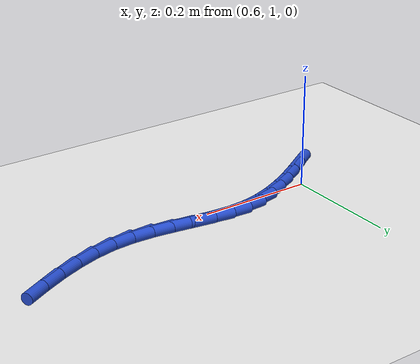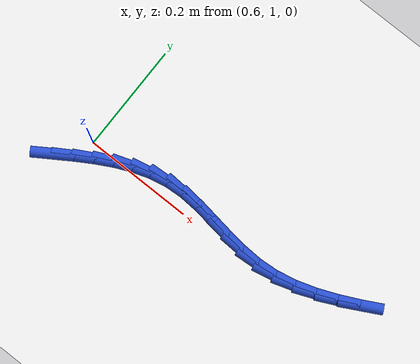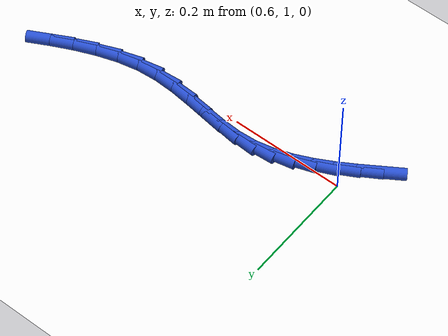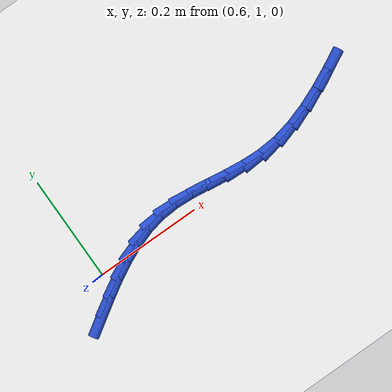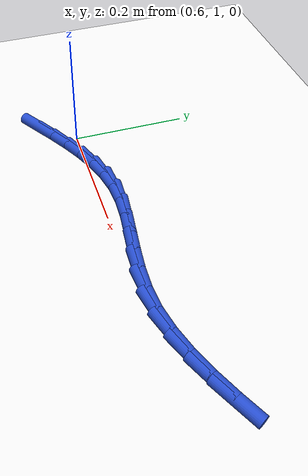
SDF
<sdf version="1.6">
 <world name="default">
  <model name="ground_plane">
   <static>1</static>
   <link name="link">
    <collision name="collision">
     <geometry><plane><normal>0 0 1</normal><size>100 100</size></plane></geometry>
     <surface><friction><ode><mu>100</mu><mu2>50</mu2></ode></friction></surface>
    </collision>
    <visual name="visual">
     <cast_shadows>0</cast_shadows>
     <geometry><plane><normal>0 0 1</normal><size>100 100</size></plane></geometry>
     <material>
      <script><uri>file://media/materials/scripts/gazebo.material</uri><name>Gazebo/WhiteGlow</name></script>
     </material>
    </visual>
   </link>
  </model>
  <model name="line">
   <link name="link_33">
    <pose>0.5584103231068537 0.9413776911139915 0.01 0 1.57 0.5734031281316788</pose>
    <collision name="collision">
     <geometry><cylinder><radius>0.01</radius><length>0.08</length></cylinder></geometry>
    </collision>
    <visual name="visual">
     <material>
      <script><name>Gazebo/Blue</name><uri>file://media/materials/scripts/gazebo.material</uri></script>
     </material>
     <geometry><cylinder><radius>0.01</radius><length>0.08</length></cylinder></geometry>
    </visual>
   </link>
   <link name="link_34">
    <pose>0.588891111867489 0.9610615851777302 0.01 0 1.57 0.5441404265611153</pose>
    <collision name="collision">
     <geometry><cylinder><radius>0.01</radius><length>0.08</length></cylinder></geometry>
    </collision>
    <visual name="visual">
     <material>
      <script><name>Gazebo/Blue</name><uri>file://media/materials/scripts/gazebo.material</uri></script>
     </material>
     <geometry><cylinder><radius>0.01</radius><length>0.08</length></cylinder></geometry>
    </visual>
   </link>
   <link name="link_35">
    <pose>0.6193964113561725 0.9795194818396171 0.01 0 1.57 0.4944797404890352</pose>
    <collision name="collision">
     <geometry><cylinder><radius>0.01</radius><length>0.08</length></cylinder></geometry>
    </collision>
    <visual name="visual">
     <material>
      <script><name>Gazebo/Blue</name><uri>file://media/materials/scripts/gazebo.material</uri></script>
     </material>
     <geometry><cylinder><radius>0.01</radius><length>0.08</length></cylinder></geometry>
    </visual>
   </link>
   <link name="link_36">
    <pose>0.6500766654431518 0.9960609312744901 0.01 0 1.57 0.4223712786166503</pose>
    <collision name="collision">
     <geometry><cylinder><radius>0.01</radius><length>0.08</length></cylinder></geometry>
    </collision>
    <visual name="visual">
     <material>
      <script><name>Gazebo/Blue</name><uri>file://media/materials/scripts/gazebo.material</uri></script>
     </material>
     <geometry><cylinder><radius>0.01</radius><length>0.08</length></cylinder></geometry>
    </visual>
   </link>
   <link name="link_37">
    <pose>0.6810823179986757 1.0099954836571878 0.01 0 1.57 0.32584374340870803</pose>
    <collision name="collision">
     <geometry><cylinder><radius>0.01</radius><length>0.08</length></cylinder></geometry>
    </collision>
    <visual name="visual">
     <material>
      <script><name>Gazebo/Blue</name><uri>file://media/materials/scripts/gazebo.material</uri></script>
     </material>
     <geometry><cylinder><radius>0.01</radius><length>0.08</length></cylinder></geometry>
    </visual>
   </link>
   <link name="link_38">
    <pose>0.7125638128929924 1.0206326891625483 0.01 0 1.57 0.20420970402357144</pose>
    <collision name="collision">
     <geometry><cylinder><radius>0.01</radius><length>0.08</length></cylinder></geometry>
    </collision>
    <visual name="visual">
     <material>
      <script><name>Gazebo/Blue</name><uri>file://media/materials/scripts/gazebo.material</uri></script>
     </material>
     <geometry><cylinder><radius>0.01</radius><length>0.08</length></cylinder></geometry>
    </visual>
   </link>
   <link name="link_39">
    <pose>0.74467159399635 1.0272820979654098 0.01 0 1.57 0.061967030962383485</pose>
    <collision name="collision">
     <geometry><cylinder><radius>0.01</radius><length>0.08</length></cylinder></geometry>
    </collision>
    <visual name="visual">
     <material>
      <script><name>Gazebo/Blue</name><uri>file://media/materials/scripts/gazebo.material</uri></script>
     </material>
     <geometry><cylinder><radius>0.01</radius><length>0.08</length></cylinder></geometry>
    </visual>
   </link>
   <link name="link_40">
    <pose>0.7775493949081596 1.0293220494198054 0.01 0 1.57 -0.058763496393828954</pose>
    <collision name="collision">
     <geometry><cylinder><radius>0.01</radius><length>0.08</length></cylinder></geometry>
    </collision>
    <visual name="visual">
     <material>
      <script><name>Gazebo/Blue</name><uri>file://media/materials/scripts/gazebo.material</uri></script>
     </material>
     <geometry><cylinder><radius>0.01</radius><length>0.08</length></cylinder></geometry>
    </visual>
   </link>
   <link name="link_41">
    <pose>0.8112229047468861 1.027340995429501 0.01 0 1.57 -0.12666415661157357</pose>
    <collision name="collision">
     <geometry><cylinder><radius>0.01</radius><length>0.08</length></cylinder></geometry>
    </collision>
    <visual name="visual">
     <material>
      <script><name>Gazebo/Blue</name><uri>file://media/materials/scripts/gazebo.material</uri></script>
     </material>
     <geometry><cylinder><radius>0.01</radius><length>0.08</length></cylinder></geometry>
    </visual>
   </link>
   <link name="link_42">
    <pose>0.8456169805940675 1.022961050059529 0.01 0 1.57 -0.14520497904019175</pose>
    <collision name="collision">
     <geometry><cylinder><radius>0.01</radius><length>0.08</length></cylinder></geometry>
    </collision>
    <visual name="visual">
     <material>
      <script><name>Gazebo/Blue</name><uri>file://media/materials/scripts/gazebo.material</uri></script>
     </material>
     <geometry><cylinder><radius>0.01</radius><length>0.08</length></cylinder></geometry>
    </visual>
   </link>
   <link name="link_43">
    <pose>0.8806532385767554 1.0178375514584797 0.01 0 1.57 -0.11775901219655653</pose>
    <collision name="collision">
     <geometry><cylinder><radius>0.01</radius><length>0.08</length></cylinder></geometry>
    </collision>
    <visual name="visual">
     <material>
      <script><name>Gazebo/Blue</name><uri>file://media/materials/scripts/gazebo.material</uri></script>
     </material>
     <geometry><cylinder><radius>0.01</radius><length>0.08</length></cylinder></geometry>
    </visual>
   </link>
   <link name="link_44">
    <pose>0.9162532948220002 1.0136258377749423 0.01 0 1.57 -0.04554335478679585</pose>
    <collision name="collision">
     <geometry><cylinder><radius>0.01</radius><length>0.08</length></cylinder></geometry>
    </collision>
    <visual name="visual">
     <material>
      <script><name>Gazebo/Blue</name><uri>file://media/materials/scripts/gazebo.material</uri></script>
     </material>
     <geometry><cylinder><radius>0.01</radius><length>0.08</length></cylinder></geometry>
    </visual>
   </link>
   <link name="link_45">
    <pose>0.952338765456853 1.0119812471575071 0.01 0 1.57 0.07015226351509476</pose>
    <collision name="collision">
     <geometry><cylinder><radius>0.01</radius><length>0.08</length></cylinder></geometry>
    </collision>
    <visual name="visual">
     <material>
      <script><name>Gazebo/Blue</name><uri>file://media/materials/scripts/gazebo.material</uri></script>
     </material>
     <geometry><cylinder><radius>0.01</radius><length>0.08</length></cylinder></geometry>
    </visual>
   </link>
   <link name="link_46">
    <pose>0.9888307542593755 1.0145454505919485 0.01 0 1.57 0.20118951825141185</pose>
    <collision name="collision">
     <geometry><cylinder><radius>0.01</radius><length>0.08</length></cylinder></geometry>
    </collision>
    <visual name="visual">
     <material>
      <script><name>Gazebo/Blue</name><uri>file://media/materials/scripts/gazebo.material</uri></script>
     </material>
     <geometry><cylinder><radius>0.01</radius><length>0.08</length></cylinder></geometry>
    </visual>
   </link>
   <link name="link_47">
    <pose>1.025616163924477 1.0220477882473606 0.01 0 1.57 0.30696045817694156</pose>
    <collision name="collision">
     <geometry><cylinder><radius>0.01</radius><length>0.08</length></cylinder></geometry>
    </collision>
    <visual name="visual">
     <material>
      <script><name>Gazebo/Blue</name><uri>file://media/materials/scripts/gazebo.material</uri></script>
     </material>
     <geometry><cylinder><radius>0.01</radius><length>0.08</length></cylinder></geometry>
    </visual>
   </link>
   <link name="link_48">
    <pose>1.0625267939365262 1.033747694885121 0.01 0 1.57 0.38700586266564696</pose>
    <collision name="collision">
     <geometry><cylinder><radius>0.01</radius><length>0.08</length></cylinder></geometry>
    </collision>
    <visual name="visual">
     <material>
      <script><name>Gazebo/Blue</name><uri>file://media/materials/scripts/gazebo.material</uri></script>
     </material>
     <geometry><cylinder><radius>0.01</radius><length>0.08</length></cylinder></geometry>
    </visual>
   </link>
   <link name="link_49">
    <pose>1.09938945054746 1.0487714083206872 0.01 0 1.57 0.44498478852891954</pose>
    <collision name="collision">
     <geometry><cylinder><radius>0.01</radius><length>0.08</length></cylinder></geometry>
    </collision>
    <visual name="visual">
     <material>
      <script><name>Gazebo/Blue</name><uri>file://media/materials/scripts/gazebo.material</uri></script>
     </material>
     <geometry><cylinder><radius>0.01</radius><length>0.08</length></cylinder></geometry>
    </visual>
   </link>
   <link name="link_50">
    <pose>1.1360309400092135 1.0662451663695172 0.01 0 1.57 0.4838858919928522</pose>
    <collision name="collision">
     <geometry><cylinder><radius>0.01</radius><length>0.08</length></cylinder></geometry>
    </collision>
    <visual name="visual">
     <material>
      <script><name>Gazebo/Blue</name><uri>file://media/materials/scripts/gazebo.material</uri></script>
     </material>
     <geometry><cylinder><radius>0.01</radius><length>0.08</length></cylinder></geometry>
    </visual>
   </link>
  </model>
 </world>
</sdf>
